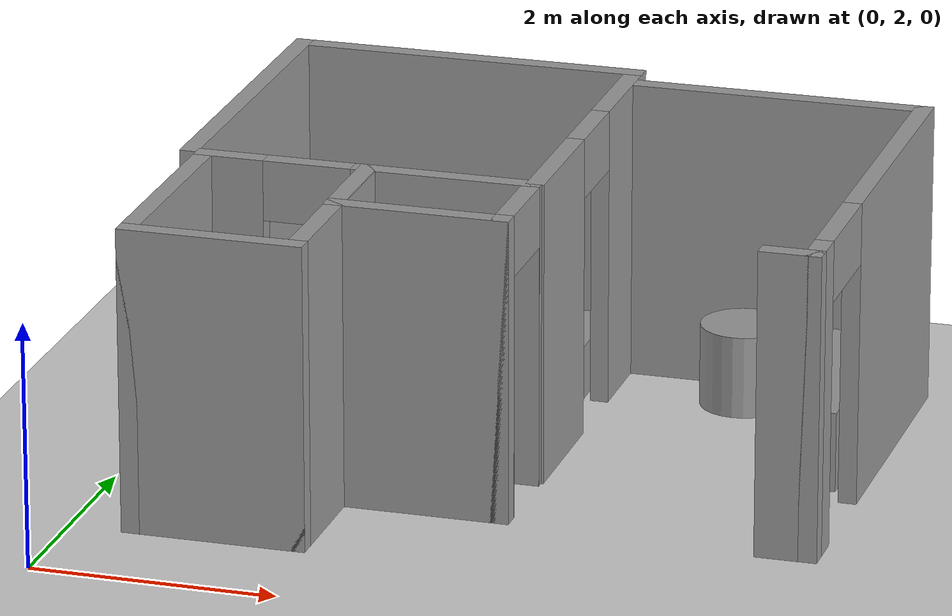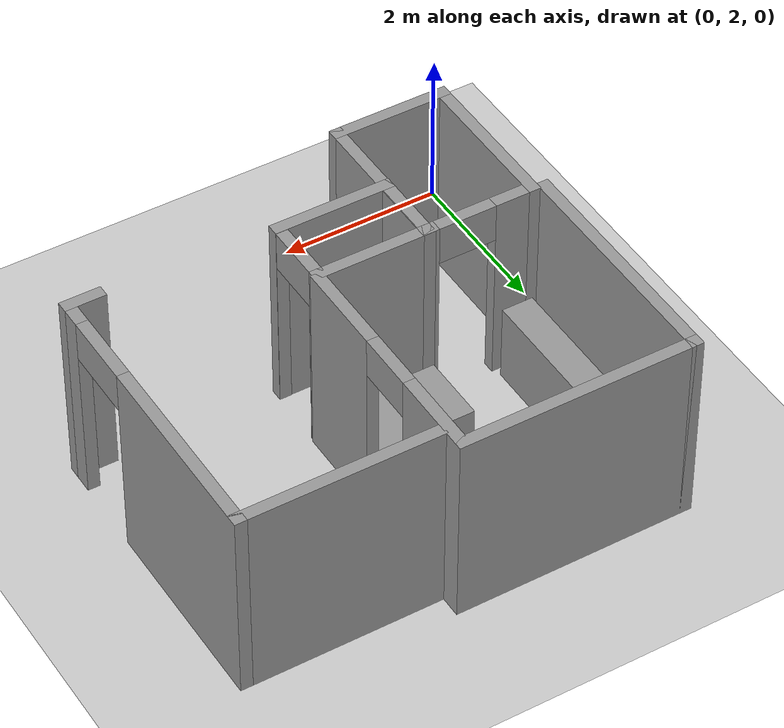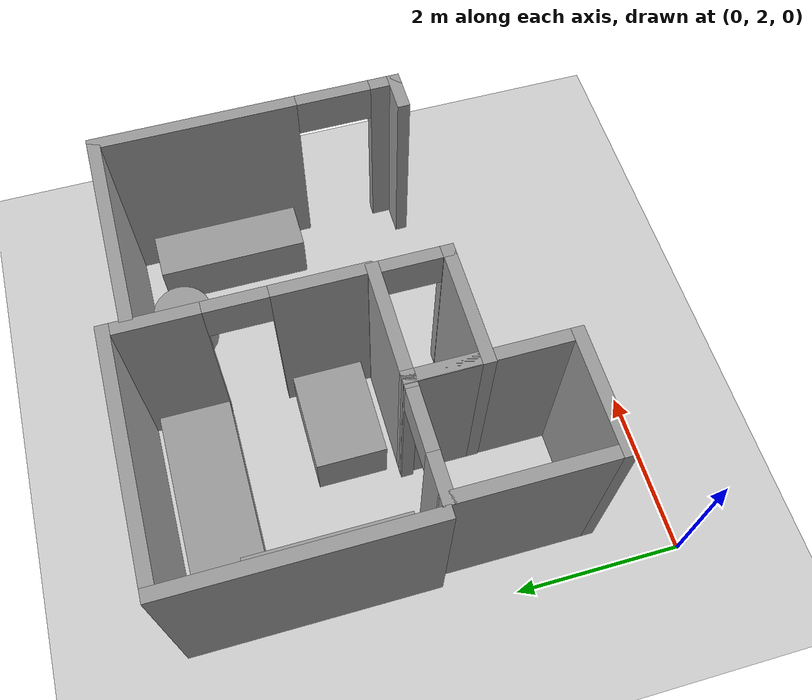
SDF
<sdf version="1.6">
 <world name="default">
  <model name="ground_plane">
   <static>1</static>
   <link name="link">
    <collision name="collision">
     <geometry><plane><normal>0 0 1</normal><size>100 100</size></plane></geometry>
     <surface><friction><ode><mu>100</mu><mu2>50</mu2></ode></friction></surface>
    </collision>
    <visual name="visual">
     <cast_shadows>0</cast_shadows>
     <geometry><plane><normal>0 0 1</normal><size>100 100</size></plane></geometry>
     <material>
      <script><uri>file://media/materials/scripts/gazebo.material</uri><name>Gazebo/Grey</name></script>
     </material>
    </visual>
   </link>
  </model>
  <model name="cma_dispensa">
   <pose>2.52584 4.40119 0 0 -0 0</pose>
   <link name="Wall_5">
    <collision name="Wall_5_Collision">
     <geometry><box><size>1 0.15 2.5</size></box></geometry>
     <pose>0 0 1.25 0 -0 0</pose>
    </collision>
    <visual name="Wall_5_Visual">
     <pose>0 0 1.25 0 -0 0</pose>
     <geometry><box><size>1 0.15 2.5</size></box></geometry>
     <material>
      <script><uri>file://media/materials/scripts/gazebo.material</uri><name>Gazebo/Grey</name></script>
      <ambient>1 1 1 1</ambient>
     </material>
    </visual>
    <pose>-0.675 0 0 0 -0 1.5708</pose>
   </link>
   <link name="Wall_6">
    <collision name="Wall_6_Collision">
     <geometry><box><size>1.5 0.15 2.5</size></box></geometry>
     <pose>0 0 1.25 0 -0 0</pose>
    </collision>
    <visual name="Wall_6_Visual">
     <pose>0 0 1.25 0 -0 0</pose>
     <geometry><box><size>1.5 0.15 2.5</size></box></geometry>
     <material>
      <script><uri>file://media/materials/scripts/gazebo.material</uri><name>Gazebo/Grey</name></script>
      <ambient>1 1 1 1</ambient>
     </material>
    </visual>
    <pose>0 0.425 0 0 -0 0</pose>
   </link>
   <link name="Wall_7">
    <pose>0.675 0 0 0 0 -1.5708</pose>
    <visual name="Wall_7_Visual_0">
     <pose>-0.4275 0 1.25 0 -0 0</pose>
     <geometry><box><size>0.145 0.15 2.5</size></box></geometry>
     <material>
      <script><uri>file://media/materials/scripts/gazebo.material</uri><name>Gazebo/Grey</name></script>
      <ambient>1 1 1 1</ambient>
     </material>
    </visual>
    <collision name="Wall_7_Collision_0">
     <geometry><box><size>0.145 0.15 2.5</size></box></geometry>
     <pose>-0.4275 0 1.25 0 -0 0</pose>
    </collision>
    <visual name="Wall_7_Visual_1">
     <pose>0.4225 0 1.25 0 -0 0</pose>
     <geometry><box><size>0.155 0.15 2.5</size></box></geometry>
     <material>
      <script><uri>file://media/materials/scripts/gazebo.material</uri><name>Gazebo/Grey</name></script>
      <ambient>1 1 1 1</ambient>
     </material>
    </visual>
    <collision name="Wall_7_Collision_1">
     <geometry><box><size>0.155 0.15 2.5</size></box></geometry>
     <pose>0.4225 0 1.25 0 -0 0</pose>
    </collision>
    <visual name="Wall_7_Visual_2">
     <pose>-0.005 0 2.25 0 -0 0</pose>
     <geometry><box><size>0.7 0.15 0.5</size></box></geometry>
     <material>
      <script><uri>file://media/materials/scripts/gazebo.material</uri><name>Gazebo/Grey</name></script>
      <ambient>1 1 1 1</ambient>
     </material>
    </visual>
    <collision name="Wall_7_Collision_2">
     <geometry><box><size>0.7 0.15 0.5</size></box></geometry>
     <pose>-0.005 0 2.25 0 -0 0</pose>
    </collision>
   </link>
   <link name="Wall_8">
    <collision name="Wall_8_Collision">
     <geometry><box><size>1.5 0.15 2.5</size></box></geometry>
     <pose>0 0 1.25 0 -0 0</pose>
    </collision>
    <visual name="Wall_8_Visual">
     <pose>0 0 1.25 0 -0 0</pose>
     <geometry><box><size>1.5 0.15 2.5</size></box></geometry>
     <material>
      <script><uri>file://media/materials/scripts/gazebo.material</uri><name>Gazebo/Grey</name></script>
      <ambient>1 1 1 1</ambient>
     </material>
    </visual>
    <pose>0 -0.425 0 0 -0 3.14159</pose>
   </link>
   <static>1</static>
  </model>
  <model name="cma_banheiro_e">
   <pose>1.18358 3.89879 0 0 -0 0</pose>
   <link name="Wall_10">
    <collision name="Wall_10_Collision">
     <geometry><box><size>1.5 0.15 2.5</size></box></geometry>
     <pose>0 0 1.25 0 -0 0</pose>
    </collision>
    <visual name="Wall_10_Visual">
     <pose>0 0 1.25 0 -0 0</pose>
     <geometry><box><size>1.5 0.15 2.5</size></box></geometry>
     <material>
      <script><uri>file://media/materials/scripts/gazebo.material</uri><name>Gazebo/Grey</name></script>
      <ambient>1 1 1 1</ambient>
     </material>
    </visual>
    <pose>0 -0.925 0 0 -0 3.14159</pose>
   </link>
   <link name="Wall_11">
    <collision name="Wall_11_Collision">
     <geometry><box><size>2 0.15 2.5</size></box></geometry>
     <pose>0 0 1.25 0 -0 0</pose>
    </collision>
    <visual name="Wall_11_Visual">
     <pose>0 0 1.25 0 -0 0</pose>
     <geometry><box><size>2 0.15 2.5</size></box></geometry>
     <material>
      <script><uri>file://media/materials/scripts/gazebo.material</uri><name>Gazebo/Grey</name></script>
      <ambient>1 1 1 1</ambient>
     </material>
    </visual>
    <pose>-0.675 0 0 0 -0 1.5708</pose>
   </link>
   <link name="Wall_12">
    <pose>0 0.925 0 0 -0 0</pose>
    <visual name="Wall_12_Visual_0">
     <pose>-0.4625 0 1.25 0 -0 0</pose>
     <geometry><box><size>0.575 0.15 2.5</size></box></geometry>
     <material>
      <script><uri>file://media/materials/scripts/gazebo.material</uri><name>Gazebo/Grey</name></script>
      <ambient>1 1 1 1</ambient>
     </material>
    </visual>
    <collision name="Wall_12_Collision_0">
     <geometry><box><size>0.575 0.15 2.5</size></box></geometry>
     <pose>-0.4625 0 1.25 0 -0 0</pose>
    </collision>
    <visual name="Wall_12_Visual_1">
     <pose>0.6475 0 1.25 0 -0 0</pose>
     <geometry><box><size>0.205 0.15 2.5</size></box></geometry>
     <material>
      <script><uri>file://media/materials/scripts/gazebo.material</uri><name>Gazebo/Grey</name></script>
      <ambient>1 1 1 1</ambient>
     </material>
    </visual>
    <collision name="Wall_12_Collision_1">
     <geometry><box><size>0.205 0.15 2.5</size></box></geometry>
     <pose>0.6475 0 1.25 0 -0 0</pose>
    </collision>
    <visual name="Wall_12_Visual_2">
     <pose>0.185 0 2.25 0 -0 0</pose>
     <geometry><box><size>0.72 0.15 0.5</size></box></geometry>
     <material>
      <script><uri>file://media/materials/scripts/gazebo.material</uri><name>Gazebo/Grey</name></script>
      <ambient>1 1 1 1</ambient>
     </material>
    </visual>
    <collision name="Wall_12_Collision_2">
     <geometry><box><size>0.72 0.15 0.5</size></box></geometry>
     <pose>0.185 0 2.25 0 -0 0</pose>
    </collision>
   </link>
   <link name="Wall_13">
    <collision name="Wall_13_Collision">
     <geometry><box><size>2 0.15 2.5</size></box></geometry>
     <pose>0 0 1.25 0 -0 0</pose>
    </collision>
    <visual name="Wall_13_Visual">
     <pose>0 0 1.25 0 -0 0</pose>
     <geometry><box><size>2 0.15 2.5</size></box></geometry>
     <material>
      <script><uri>file://media/materials/scripts/gazebo.material</uri><name>Gazebo/Grey</name></script>
      <ambient>1 1 1 1</ambient>
     </material>
    </visual>
    <pose>0.675 0 0 0 0 -1.5708</pose>
   </link>
   <static>1</static>
  </model>
  <model name="cma_qe">
   <pose>1.79561 6.31228 0 0 -0 0</pose>
   <link name="Wall_15">
    <collision name="Wall_15_Collision">
     <geometry><box><size>3 0.15 2.5</size></box></geometry>
     <pose>0 0 1.25 0 -0 0</pose>
    </collision>
    <visual name="Wall_15_Visual">
     <pose>0 0 1.25 0 -0 0</pose>
     <geometry><box><size>3 0.15 2.5</size></box></geometry>
     <material>
      <script><uri>file://media/materials/scripts/gazebo.material</uri><name>Gazebo/Grey</name></script>
      <ambient>1 1 1 1</ambient>
     </material>
    </visual>
    <pose>-1.425 0 0 0 -0 1.5708</pose>
   </link>
   <link name="Wall_16">
    <collision name="Wall_16_Collision">
     <geometry><box><size>3 0.15 2.5</size></box></geometry>
     <pose>0 0 1.25 0 -0 0</pose>
    </collision>
    <visual name="Wall_16_Visual">
     <pose>0 0 1.25 0 -0 0</pose>
     <geometry><box><size>3 0.15 2.5</size></box></geometry>
     <material>
      <script><uri>file://media/materials/scripts/gazebo.material</uri><name>Gazebo/Grey</name></script>
      <ambient>1 1 1 1</ambient>
     </material>
    </visual>
    <pose>0 1.425 0 0 -0 0</pose>
   </link>
   <link name="Wall_17">
    <pose>1.425 0 0 0 0 -1.5708</pose>
    <visual name="Wall_17_Visual_0">
     <pose>-0.945 0 1.25 0 -0 0</pose>
     <geometry><box><size>1.11 0.15 2.5</size></box></geometry>
     <material>
      <script><uri>file://media/materials/scripts/gazebo.material</uri><name>Gazebo/Grey</name></script>
      <ambient>1 1 1 1</ambient>
     </material>
    </visual>
    <collision name="Wall_17_Collision_0">
     <geometry><box><size>1.11 0.15 2.5</size></box></geometry>
     <pose>-0.945 0 1.25 0 -0 0</pose>
    </collision>
    <visual name="Wall_17_Visual_1">
     <pose>0.92 0 1.25 0 -0 0</pose>
     <geometry><box><size>1.16 0.15 2.5</size></box></geometry>
     <material>
      <script><uri>file://media/materials/scripts/gazebo.material</uri><name>Gazebo/Grey</name></script>
      <ambient>1 1 1 1</ambient>
     </material>
    </visual>
    <collision name="Wall_17_Collision_1">
     <geometry><box><size>1.16 0.15 2.5</size></box></geometry>
     <pose>0.92 0 1.25 0 -0 0</pose>
    </collision>
    <visual name="Wall_17_Visual_2">
     <pose>-0.025 0 2.25 0 -0 0</pose>
     <geometry><box><size>0.73 0.15 0.5</size></box></geometry>
     <material>
      <script><uri>file://media/materials/scripts/gazebo.material</uri><name>Gazebo/Grey</name></script>
      <ambient>1 1 1 1</ambient>
     </material>
    </visual>
    <collision name="Wall_17_Collision_2">
     <geometry><box><size>0.73 0.15 0.5</size></box></geometry>
     <pose>-0.025 0 2.25 0 -0 0</pose>
    </collision>
   </link>
   <static>1</static>
  </model>
  <model name="cma_area2">
   <pose>4.52275 5.67862 0 0 -0 0</pose>
   <link name="Wall_23">
    <collision name="Wall_23_Collision">
     <geometry><box><size>2.5 0.15 2.5</size></box></geometry>
     <pose>0 0 1.25 0 -0 0</pose>
    </collision>
    <visual name="Wall_23_Visual">
     <pose>0 0 1.25 0 -0 0</pose>
     <geometry><box><size>2.5 0.15 2.5</size></box></geometry>
     <material>
      <script><uri>file://media/materials/scripts/gazebo.material</uri><name>Gazebo/Grey</name></script>
      <ambient>1 1 1 1</ambient>
     </material>
    </visual>
    <pose>0 1.8 0 0 -0 0</pose>
   </link>
   <link name="Wall_24">
    <pose>1.175 0 0 0 0 -1.5708</pose>
    <visual name="Wall_24_Visual_0">
     <pose>-0.6425 0 1.25 0 -0 0</pose>
     <geometry><box><size>2.465 0.15 2.5</size></box></geometry>
     <material>
      <script><uri>file://media/materials/scripts/gazebo.material</uri><name>Gazebo/Grey</name></script>
      <ambient>1 1 1 1</ambient>
     </material>
    </visual>
    <collision name="Wall_24_Collision_0">
     <geometry><box><size>2.465 0.15 2.5</size></box></geometry>
     <pose>-0.6425 0 1.25 0 -0 0</pose>
    </collision>
    <visual name="Wall_24_Visual_1">
     <pose>1.6825 0 1.25 0 -0 0</pose>
     <geometry><box><size>0.385 0.15 2.5</size></box></geometry>
     <material>
      <script><uri>file://media/materials/scripts/gazebo.material</uri><name>Gazebo/Grey</name></script>
      <ambient>1 1 1 1</ambient>
     </material>
    </visual>
    <collision name="Wall_24_Collision_1">
     <geometry><box><size>0.385 0.15 2.5</size></box></geometry>
     <pose>1.6825 0 1.25 0 -0 0</pose>
    </collision>
    <visual name="Wall_24_Visual_2">
     <pose>1.04 0 2.25 0 -0 0</pose>
     <geometry><box><size>0.9 0.15 0.5</size></box></geometry>
     <material>
      <script><uri>file://media/materials/scripts/gazebo.material</uri><name>Gazebo/Grey</name></script>
      <ambient>1 1 1 1</ambient>
     </material>
    </visual>
    <collision name="Wall_24_Collision_2">
     <geometry><box><size>0.9 0.15 0.5</size></box></geometry>
     <pose>1.04 0 2.25 0 -0 0</pose>
    </collision>
   </link>
   <link name="Wall_25">
    <collision name="Wall_25_Collision">
     <geometry><box><size>0.5 0.15 2.5</size></box></geometry>
     <pose>0 0 1.25 0 -0 0</pose>
    </collision>
    <visual name="Wall_25_Visual">
     <pose>0 0 1.25 0 -0 0</pose>
     <geometry><box><size>0.5 0.15 2.5</size></box></geometry>
     <material>
      <script><uri>file://media/materials/scripts/gazebo.material</uri><name>Gazebo/Grey</name></script>
      <ambient>1 1 1 1</ambient>
     </material>
    </visual>
    <pose>1 -1.8 0 0 -0 3.14159</pose>
   </link>
   <static>1</static>
  </model>
  <model name="cma_area_a2">
   <link name="link_1">
    <pose>-4e-06 -3e-06 0 0 -0 0</pose>
    <inertial>
     <mass>0.72139</mass>
     <inertia>
      <ixx>0.235397</ixx>
      <ixy>0</ixy>
      <ixz>0</ixz>
      <iyy>0.0468588</iyy>
      <iyz>0</iyz>
      <izz>0.229658</izz>
     </inertia>
    </inertial>
    <visual name="visual">
     <geometry><box><size>0.58481 1.86501 0.661416</size></box></geometry>
     <material>
      <lighting>1</lighting>
      <script><uri>file://media/materials/scripts/gazebo.material</uri><name>Gazebo/Grey</name></script>
      <ambient>0.3 0.3 0.3 1</ambient>
      <diffuse>0.7 0.7 0.7 1</diffuse>
      <specular>0.01 0.01 0.01 1</specular>
      <emissive>0 0 0 1</emissive>
     </material>
    </visual>
    <collision name="collision">
     <geometry><box><size>0.58481 1.86501 0.661416</size></box></geometry>
     <surface>
      <friction>
       <ode><mu>1</mu><mu2>1</mu2><fdir1>0 0 0</fdir1><slip1>0</slip1><slip2>0</slip2></ode>
       <torsional>
        <coefficient>1</coefficient>
        <patch_radius>0</patch_radius>
        <surface_radius>0</surface_radius>
        <use_patch_radius>1</use_patch_radius>
        <ode><slip>0</slip></ode>
       </torsional>
      </friction>
      <bounce><restitution_coefficient>0</restitution_coefficient><threshold>1e+06</threshold></bounce>
      <contact>
       <collide_without_contact>0</collide_without_contact>
       <collide_without_contact_bitmask>1</collide_without_contact_bitmask>
       <collide_bitmask>1</collide_bitmask>
       <ode>
        <soft_cfm>0</soft_cfm>
        <soft_erp>0.2</soft_erp>
        <kp>1e+13</kp>
        <kd>1</kd>
        <max_vel>0.01</max_vel>
        <min_depth>0</min_depth>
       </ode>
       <bullet>
        <split_impulse>1</split_impulse>
        <split_impulse_penetration_threshold>-0.01</split_impulse_penetration_threshold>
        <soft_cfm>0</soft_cfm>
        <soft_erp>0.2</soft_erp>
        <kp>1e+13</kp>
        <kd>1</kd>
       </bullet>
      </contact>
     </surface>
    </collision>
   </link>
   <static>0</static>
   <pose>5.25619 6.23248 0.330708 0 -1e-06 0</pose>
  </model>
  <model name="cma_area_lixo">
   <link name="link_0">
    <pose>-2e-06 -0 0 0 -0 0</pose>
    <inertial>
     <mass>0.353138</mass>
     <inertia>
      <ixx>0.0252978</ixx>
      <ixy>0</ixy>
      <ixz>0</ixz>
      <iyy>0.0252978</iyy>
      <iyz>0</iyz>
      <izz>0.0226035</izz>
     </inertia>
    </inertial>
    <visual name="visual">
     <geometry><cylinder><radius>0.357788</radius><length>0.689638</length></cylinder></geometry>
     <material>
      <lighting>1</lighting>
      <script><uri>file://media/materials/scripts/gazebo.material</uri><name>Gazebo/Grey</name></script>
      <ambient>0.3 0.3 0.3 1</ambient>
      <diffuse>0.7 0.7 0.7 1</diffuse>
      <specular>0.01 0.01 0.01 1</specular>
      <emissive>0 0 0 1</emissive>
     </material>
    </visual>
    <collision name="collision">
     <geometry><cylinder><radius>0.357788</radius><length>0.689638</length></cylinder></geometry>
     <surface>
      <friction>
       <ode><mu>1</mu><mu2>1</mu2><fdir1>0 0 0</fdir1><slip1>0</slip1><slip2>0</slip2></ode>
       <torsional>
        <coefficient>1</coefficient>
        <patch_radius>0</patch_radius>
        <surface_radius>0</surface_radius>
        <use_patch_radius>1</use_patch_radius>
        <ode><slip>0</slip></ode>
       </torsional>
      </friction>
      <bounce><restitution_coefficient>0</restitution_coefficient><threshold>1e+06</threshold></bounce>
      <contact>
       <collide_without_contact>0</collide_without_contact>
       <collide_without_contact_bitmask>1</collide_without_contact_bitmask>
       <collide_bitmask>1</collide_bitmask>
       <ode>
        <soft_cfm>0</soft_cfm>
        <soft_erp>0.2</soft_erp>
        <kp>1e+13</kp>
        <kd>1</kd>
        <max_vel>0.01</max_vel>
        <min_depth>0</min_depth>
       </ode>
       <bullet>
        <split_impulse>1</split_impulse>
        <split_impulse_penetration_threshold>-0.01</split_impulse_penetration_threshold>
        <soft_cfm>0</soft_cfm>
        <soft_erp>0.2</soft_erp>
        <kp>1e+13</kp>
        <kd>1</kd>
       </bullet>
      </contact>
     </surface>
    </collision>
   </link>
   <static>0</static>
   <pose>4.35576 7.00999 0.344812 -5e-06 -5e-06 0</pose>
  </model>
  <model name="cma_emp_a1">
   <link name="link_0">
    <pose>-2e-06 -4e-06 0 0 -0 0</pose>
    <inertial>
     <mass>0.792994</mass>
     <inertia>
      <ixx>0.0626161</ixx>
      <ixy>0</ixy>
      <ixz>0</ixz>
      <iyy>0.287022</iyy>
      <iyz>0</iyz>
      <izz>0.322615</izz>
     </inertia>
    </inertial>
    <visual name="visual">
     <geometry><box><size>2.03443 0.862015 0.45218</size></box></geometry>
     <material>
      <lighting>1</lighting>
      <script><uri>file://media/materials/scripts/gazebo.material</uri><name>Gazebo/Grey</name></script>
      <ambient>0.3 0.3 0.3 1</ambient>
      <diffuse>0.7 0.7 0.7 1</diffuse>
      <specular>0.01 0.01 0.01 1</specular>
      <emissive>0 0 0 1</emissive>
     </material>
    </visual>
    <collision name="collision">
     <geometry><box><size>2.03443 0.862015 0.45218</size></box></geometry>
     <surface>
      <friction>
       <ode><mu>1</mu><mu2>1</mu2><fdir1>0 0 0</fdir1><slip1>0</slip1><slip2>0</slip2></ode>
       <torsional>
        <coefficient>1</coefficient>
        <patch_radius>0</patch_radius>
        <surface_radius>0</surface_radius>
        <use_patch_radius>1</use_patch_radius>
        <ode><slip>0</slip></ode>
       </torsional>
      </friction>
      <bounce><restitution_coefficient>0</restitution_coefficient><threshold>1e+06</threshold></bounce>
      <contact>
       <collide_without_contact>0</collide_without_contact>
       <collide_without_contact_bitmask>1</collide_without_contact_bitmask>
       <collide_bitmask>1</collide_bitmask>
       <ode>
        <soft_cfm>0</soft_cfm>
        <soft_erp>0.2</soft_erp>
        <kp>1e+13</kp>
        <kd>1</kd>
        <max_vel>0.01</max_vel>
        <min_depth>0</min_depth>
       </ode>
       <bullet>
        <split_impulse>1</split_impulse>
        <split_impulse_penetration_threshold>-0.01</split_impulse_penetration_threshold>
        <soft_cfm>0</soft_cfm>
        <soft_erp>0.2</soft_erp>
        <kp>1e+13</kp>
        <kd>1</kd>
       </bullet>
      </contact>
     </surface>
    </collision>
   </link>
   <static>0</static>
   <pose>2.06895 7.13219 0.22609 0 -0 0</pose>
  </model>
  <model name="cma_emp_a2">
   <link name="link_1">
    <pose>-2e-06 -3e-06 0 0 -0 0</pose>
    <inertial>
     <mass>0.673659</mass>
     <inertia>
      <ixx>0.0649818</ixx>
      <ixy>0</ixy>
      <ixz>0</ixz>
      <iyy>0.105429</iyy>
      <iyz>0</iyz>
      <izz>0.121244</izz>
     </inertia>
    </inertial>
    <visual name="visual">
     <geometry><box><size>1.20005 0.848307 0.661741</size></box></geometry>
     <material>
      <lighting>1</lighting>
      <script><uri>file://media/materials/scripts/gazebo.material</uri><name>Gazebo/Grey</name></script>
      <ambient>0.3 0.3 0.3 1</ambient>
      <diffuse>0.7 0.7 0.7 1</diffuse>
      <specular>0.01 0.01 0.01 1</specular>
      <emissive>0 0 0 1</emissive>
     </material>
    </visual>
    <collision name="collision">
     <geometry><box><size>1.20005 0.848307 0.661741</size></box></geometry>
     <surface>
      <friction>
       <ode><mu>1</mu><mu2>1</mu2><fdir1>0 0 0</fdir1><slip1>0</slip1><slip2>0</slip2></ode>
       <torsional>
        <coefficient>1</coefficient>
        <patch_radius>0</patch_radius>
        <surface_radius>0</surface_radius>
        <use_patch_radius>1</use_patch_radius>
        <ode><slip>0</slip></ode>
       </torsional>
      </friction>
      <bounce><restitution_coefficient>0</restitution_coefficient><threshold>1e+06</threshold></bounce>
      <contact>
       <collide_without_contact>0</collide_without_contact>
       <collide_without_contact_bitmask>1</collide_without_contact_bitmask>
       <collide_bitmask>1</collide_bitmask>
       <ode>
        <soft_cfm>0</soft_cfm>
        <soft_erp>0.2</soft_erp>
        <kp>1e+13</kp>
        <kd>1</kd>
        <max_vel>0.01</max_vel>
        <min_depth>0</min_depth>
       </ode>
       <bullet>
        <split_impulse>1</split_impulse>
        <split_impulse_penetration_threshold>-0.01</split_impulse_penetration_threshold>
        <soft_cfm>0</soft_cfm>
        <soft_erp>0.2</soft_erp>
        <kp>1e+13</kp>
        <kd>1</kd>
       </bullet>
      </contact>
     </surface>
    </collision>
   </link>
   <static>0</static>
   <pose>2.47376 5.46593 0.33087 0 -0 0</pose>
  </model>
  <model name="cma_emp_a3">
   <link name="link_2">
    <pose>0 -3e-06 0 0 -0 0</pose>
    <inertial>
     <mass>0.770093</mass>
     <inertia>
      <ixx>0.310363</ixx>
      <ixy>0</ixy>
      <ixz>0</ixz>
      <iyy>0.0740953</iyy>
      <iyz>0</iyz>
      <izz>0.256109</izz>
     </inertia>
    </inertial>
    <visual name="visual">
     <geometry><box><size>0.393179 1.95863 1</size></box></geometry>
     <material>
      <lighting>1</lighting>
      <script><uri>file://media/materials/scripts/gazebo.material</uri><name>Gazebo/Grey</name></script>
      <ambient>0.3 0.3 0.3 1</ambient>
      <diffuse>0.7 0.7 0.7 1</diffuse>
      <specular>0.01 0.01 0.01 1</specular>
      <emissive>0 0 0 1</emissive>
     </material>
    </visual>
    <collision name="collision">
     <geometry><box><size>0.393179 1.95863 1</size></box></geometry>
     <surface>
      <friction>
       <ode><mu>1</mu><mu2>1</mu2><fdir1>0 0 0</fdir1><slip1>0</slip1><slip2>0</slip2></ode>
       <torsional>
        <coefficient>1</coefficient>
        <patch_radius>0</patch_radius>
        <surface_radius>0</surface_radius>
        <use_patch_radius>1</use_patch_radius>
        <ode><slip>0</slip></ode>
       </torsional>
      </friction>
      <bounce><restitution_coefficient>0</restitution_coefficient><threshold>1e+06</threshold></bounce>
      <contact>
       <collide_without_contact>0</collide_without_contact>
       <collide_without_contact_bitmask>1</collide_without_contact_bitmask>
       <collide_bitmask>1</collide_bitmask>
       <ode>
        <soft_cfm>0</soft_cfm>
        <soft_erp>0.2</soft_erp>
        <kp>1e+13</kp>
        <kd>1</kd>
        <max_vel>0.01</max_vel>
        <min_depth>0</min_depth>
       </ode>
       <bullet>
        <split_impulse>1</split_impulse>
        <split_impulse_penetration_threshold>-0.01</split_impulse_penetration_threshold>
        <soft_cfm>0</soft_cfm>
        <soft_erp>0.2</soft_erp>
        <kp>1e+13</kp>
        <kd>1</kd>
       </bullet>
      </contact>
     </surface>
    </collision>
   </link>
   <static>0</static>
   <pose>0.757759 5.97241 0.5 0 0 -0.00011</pose>
  </model>
 </world>
</sdf>
